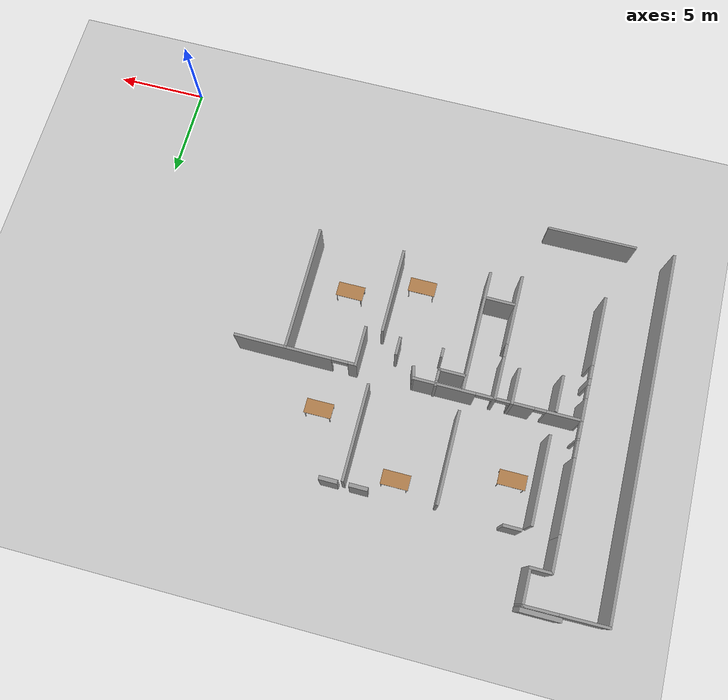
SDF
<sdf version="1.6">
 <world name="default">
  <model name="ground_plane">
   <static>1</static>
   <link name="link">
    <collision name="collision">
     <geometry><plane><normal>0 0 1</normal><size>100 100</size></plane></geometry>
     <surface><friction><ode><mu>100</mu><mu2>50</mu2></ode></friction></surface>
    </collision>
    <visual name="visual">
     <cast_shadows>0</cast_shadows>
     <geometry><plane><normal>0 0 1</normal><size>100 100</size></plane></geometry>
     <material>
      <script><uri>file://media/materials/scripts/gazebo.material</uri><name>Gazebo/Grey</name></script>
     </material>
    </visual>
   </link>
  </model>
  <model name="fin_se1f1.sdf">
   <pose>1.8125 -2.2901 0 0 -0 0</pose>
   <link name="Wall_0">
    <collision name="Wall_0_Collision">
     <geometry><box><size>20 0.15 2.5</size></box></geometry>
     <pose>0 0 1.25 0 -0 0</pose>
    </collision>
    <visual name="Wall_0_Visual">
     <pose>0 0 1.25 0 -0 0</pose>
     <geometry><box><size>20 0.15 2.5</size></box></geometry>
     <material>
      <script><uri>file://media/materials/scripts/gazebo.material</uri><name>Gazebo/Grey</name></script>
      <ambient>1 1 1 1</ambient>
     </material>
     <meta><layer>0</layer></meta>
    </visual>
    <pose>-30.7496 16.4496 0 0 0 -1.5708</pose>
   </link>
   <link name="Wall_100">
    <collision name="Wall_100_Collision">
     <geometry><box><size>2.25 0.15 2.5</size></box></geometry>
     <pose>0 0 1.25 0 -0 0</pose>
    </collision>
    <visual name="Wall_100_Visual">
     <pose>0 0 1.25 0 -0 0</pose>
     <geometry><box><size>2.25 0.15 2.5</size></box></geometry>
     <material>
      <script><uri>file://media/materials/scripts/gazebo.material</uri><name>Gazebo/Grey</name></script>
      <ambient>1 1 1 1</ambient>
     </material>
     <meta><layer>0</layer></meta>
    </visual>
    <pose>-15.464 15.7396 0 0 -0 1.5708</pose>
   </link>
   <link name="Wall_101">
    <pose>-12.164 16.7896 0 0 -0 0</pose>
    <visual name="Wall_101_Visual_0">
     <pose>-3.13147 0 1.25 0 -0 0</pose>
     <geometry><box><size>0.487063 0.15 2.5</size></box></geometry>
     <material>
      <script><uri>file://media/materials/scripts/gazebo.material</uri><name>Gazebo/Grey</name></script>
      <ambient>1 1 1 1</ambient>
     </material>
     <meta><layer>0</layer></meta>
    </visual>
    <collision name="Wall_101_Collision_0">
     <geometry><box><size>0.487063 0.15 2.5</size></box></geometry>
     <pose>-3.13147 0 1.25 0 -0 0</pose>
    </collision>
    <visual name="Wall_101_Visual_1">
     <pose>0.693532 0 1.25 0 -0 0</pose>
     <geometry><box><size>5.36294 0.15 2.5</size></box></geometry>
     <material>
      <script><uri>file://media/materials/scripts/gazebo.material</uri><name>Gazebo/Grey</name></script>
      <ambient>1 1 1 1</ambient>
     </material>
     <meta><layer>0</layer></meta>
    </visual>
    <collision name="Wall_101_Collision_1">
     <geometry><box><size>5.36294 0.15 2.5</size></box></geometry>
     <pose>0.693532 0 1.25 0 -0 0</pose>
    </collision>
    <visual name="Wall_101_Visual_2">
     <pose>-2.43794 0 2.25 0 -0 0</pose>
     <geometry><box><size>0.9 0.15 0.5</size></box></geometry>
     <material>
      <script><uri>file://media/materials/scripts/gazebo.material</uri><name>Gazebo/Grey</name></script>
      <ambient>1 1 1 1</ambient>
     </material>
     <meta><layer>0</layer></meta>
    </visual>
    <collision name="Wall_101_Collision_2">
     <geometry><box><size>0.9 0.15 0.5</size></box></geometry>
     <pose>-2.43794 0 2.25 0 -0 0</pose>
    </collision>
   </link>
   <link name="Wall_104">
    <collision name="Wall_104_Collision">
     <geometry><box><size>7 0.15 2.5</size></box></geometry>
     <pose>0 0 1.25 0 -0 0</pose>
    </collision>
    <visual name="Wall_104_Visual">
     <pose>0 0 1.25 0 -0 0</pose>
     <geometry><box><size>7 0.15 2.5</size></box></geometry>
     <material>
      <script><uri>file://media/materials/scripts/gazebo.material</uri><name>Gazebo/Grey</name></script>
      <ambient>1 1 1 1</ambient>
     </material>
     <meta><layer>0</layer></meta>
    </visual>
    <pose>-11.6118 13.3512 0 0 0 -1.5708</pose>
   </link>
   <link name="Wall_114">
    <collision name="Wall_114_Collision">
     <geometry><box><size>2 0.15 2.5</size></box></geometry>
     <pose>0 0 1.25 0 -0 0</pose>
    </collision>
    <visual name="Wall_114_Visual">
     <pose>0 0 1.25 0 -0 0</pose>
     <geometry><box><size>2 0.15 2.5</size></box></geometry>
     <material>
      <script><uri>file://media/materials/scripts/gazebo.material</uri><name>Gazebo/Grey</name></script>
      <ambient>1 1 1 1</ambient>
     </material>
     <meta><layer>0</layer></meta>
    </visual>
    <pose>-26.1645 15.6146 0 0 -0 1.5708</pose>
   </link>
   <link name="Wall_116">
    <collision name="Wall_116_Collision">
     <geometry><box><size>2 0.15 2.5</size></box></geometry>
     <pose>0 0 1.25 0 -0 0</pose>
    </collision>
    <visual name="Wall_116_Visual">
     <pose>0 0 1.25 0 -0 0</pose>
     <geometry><box><size>2 0.15 2.5</size></box></geometry>
     <material>
      <script><uri>file://media/materials/scripts/gazebo.material</uri><name>Gazebo/Grey</name></script>
      <ambient>1 1 1 1</ambient>
     </material>
     <meta><layer>0</layer></meta>
    </visual>
    <pose>-23.8638 15.7977 0 0 0 -1.5708</pose>
   </link>
   <link name="Wall_118">
    <collision name="Wall_118_Collision">
     <geometry><box><size>1.75 0.15 2.5</size></box></geometry>
     <pose>0 0 1.25 0 -0 0</pose>
    </collision>
    <visual name="Wall_118_Visual">
     <pose>0 0 1.25 0 -0 0</pose>
     <geometry><box><size>1.75 0.15 2.5</size></box></geometry>
     <material>
      <script><uri>file://media/materials/scripts/gazebo.material</uri><name>Gazebo/Grey</name></script>
      <ambient>1 1 1 1</ambient>
     </material>
     <meta><layer>0</layer></meta>
    </visual>
    <pose>-22.0422 11.426 0 0 -0 3.14159</pose>
   </link>
   <link name="Wall_120">
    <pose>-19.7977 16.3512 0 0 0 -1.5708</pose>
    <visual name="Wall_120_Visual_0">
     <pose>-0.341993 0 1.25 0 -0 0</pose>
     <geometry><box><size>0.316013 0.15 2.5</size></box></geometry>
     <material>
      <script><uri>file://media/materials/scripts/gazebo.material</uri><name>Gazebo/Grey</name></script>
      <ambient>1 1 1 1</ambient>
     </material>
     <meta><layer>0</layer></meta>
    </visual>
    <collision name="Wall_120_Collision_0">
     <geometry><box><size>0.316013 0.15 2.5</size></box></geometry>
     <pose>-0.341993 0 1.25 0 -0 0</pose>
    </collision>
    <visual name="Wall_120_Visual_1">
     <pose>0.158007 0 2.25 0 -0 0</pose>
     <geometry><box><size>0.683987 0.15 0.5</size></box></geometry>
     <material>
      <script><uri>file://media/materials/scripts/gazebo.material</uri><name>Gazebo/Grey</name></script>
      <ambient>1 1 1 1</ambient>
     </material>
     <meta><layer>0</layer></meta>
    </visual>
    <collision name="Wall_120_Collision_1">
     <geometry><box><size>0.683987 0.15 0.5</size></box></geometry>
     <pose>0.158007 0 2.25 0 -0 0</pose>
    </collision>
   </link>
   <link name="Wall_121">
    <collision name="Wall_121_Collision">
     <geometry><box><size>1.5 0.15 2.5</size></box></geometry>
     <pose>0 0 1.25 0 -0 0</pose>
    </collision>
    <visual name="Wall_121_Visual">
     <pose>0 0 1.25 0 -0 0</pose>
     <geometry><box><size>1.5 0.15 2.5</size></box></geometry>
     <material>
      <script><uri>file://media/materials/scripts/gazebo.material</uri><name>Gazebo/Grey</name></script>
      <ambient>1 1 1 1</ambient>
     </material>
     <meta><layer>0</layer></meta>
    </visual>
    <pose>-20.4727 15.9262 0 0 -0 3.14159</pose>
   </link>
   <link name="Wall_123">
    <collision name="Wall_123_Collision">
     <geometry><box><size>0.5 0.15 2.5</size></box></geometry>
     <pose>0 0 1.25 0 -0 0</pose>
    </collision>
    <visual name="Wall_123_Visual">
     <pose>0 0 1.25 0 -0 0</pose>
     <geometry><box><size>0.5 0.15 2.5</size></box></geometry>
     <material>
      <script><uri>file://media/materials/scripts/gazebo.material</uri><name>Gazebo/Grey</name></script>
      <ambient>1 1 1 1</ambient>
     </material>
     <meta><layer>0</layer></meta>
    </visual>
    <pose>-19.7442 14.9961 0 0 0 -1.5708</pose>
   </link>
   <link name="Wall_125">
    <collision name="Wall_125_Collision">
     <geometry><box><size>1 0.15 2.5</size></box></geometry>
     <pose>0 0 1.25 0 -0 0</pose>
    </collision>
    <visual name="Wall_125_Visual">
     <pose>0 0 1.25 0 -0 0</pose>
     <geometry><box><size>1 0.15 2.5</size></box></geometry>
     <material>
      <script><uri>file://media/materials/scripts/gazebo.material</uri><name>Gazebo/Grey</name></script>
      <ambient>1 1 1 1</ambient>
     </material>
     <meta><layer>0</layer></meta>
    </visual>
    <pose>-17.39 15.2276 0 0 0 -1.5708</pose>
   </link>
   <link name="Wall_23">
    <collision name="Wall_23_Collision">
     <geometry><box><size>2 0.15 2.5</size></box></geometry>
     <pose>0 0 1.25 0 -0 0</pose>
    </collision>
    <visual name="Wall_23_Visual">
     <pose>0 0 1.25 0 -0 0</pose>
     <geometry><box><size>2 0.15 2.5</size></box></geometry>
     <material>
      <script><uri>file://media/materials/scripts/gazebo.material</uri><name>Gazebo/Grey</name></script>
      <ambient>1 1 1 1</ambient>
     </material>
     <meta><layer>0</layer></meta>
    </visual>
    <pose>-27.5496 23.6496 0 0 -0 1.5708</pose>
   </link>
   <link name="Wall_24">
    <collision name="Wall_24_Collision">
     <geometry><box><size>1.25 0.15 2.5</size></box></geometry>
     <pose>0 0 1.25 0 -0 0</pose>
    </collision>
    <visual name="Wall_24_Visual">
     <pose>0 0 1.25 0 -0 0</pose>
     <geometry><box><size>1.25 0.15 2.5</size></box></geometry>
     <material>
      <script><uri>file://media/materials/scripts/gazebo.material</uri><name>Gazebo/Grey</name></script>
      <ambient>1 1 1 1</ambient>
     </material>
     <meta><layer>0</layer></meta>
    </visual>
    <pose>-26.9996 24.5746 0 0 -0 0</pose>
   </link>
   <link name="Wall_25">
    <collision name="Wall_25_Collision">
     <geometry><box><size>2 0.15 2.5</size></box></geometry>
     <pose>0 0 1.25 0 -0 0</pose>
    </collision>
    <visual name="Wall_25_Visual">
     <pose>0 0 1.25 0 -0 0</pose>
     <geometry><box><size>2 0.15 2.5</size></box></geometry>
     <material>
      <script><uri>file://media/materials/scripts/gazebo.material</uri><name>Gazebo/Grey</name></script>
      <ambient>1 1 1 1</ambient>
     </material>
     <meta><layer>0</layer></meta>
    </visual>
    <pose>-26.4496 25.4996 0 0 -0 1.5708</pose>
   </link>
   <link name="Wall_27">
    <pose>-28.5996 26.3996 0 0 0 -3.12996</pose>
    <visual name="Wall_27_Visual_0">
     <pose>-2.20066 0 1.25 0 -0 0</pose>
     <geometry><box><size>0.048973 0.15 2.5</size></box></geometry>
     <material>
      <script><uri>file://media/materials/scripts/gazebo.material</uri><name>Gazebo/Grey</name></script>
      <ambient>1 1 1 1</ambient>
     </material>
     <meta><layer>0</layer></meta>
    </visual>
    <collision name="Wall_27_Collision_0">
     <geometry><box><size>0.048973 0.15 2.5</size></box></geometry>
     <pose>-2.20066 0 1.25 0 -0 0</pose>
    </collision>
    <visual name="Wall_27_Visual_1">
     <pose>0.939694 0 1.25 0 -0 0</pose>
     <geometry><box><size>2.5709 0.15 2.5</size></box></geometry>
     <material>
      <script><uri>file://media/materials/scripts/gazebo.material</uri><name>Gazebo/Grey</name></script>
      <ambient>1 1 1 1</ambient>
     </material>
     <meta><layer>0</layer></meta>
    </visual>
    <collision name="Wall_27_Collision_1">
     <geometry><box><size>2.5709 0.15 2.5</size></box></geometry>
     <pose>0.939694 0 1.25 0 -0 0</pose>
    </collision>
    <visual name="Wall_27_Visual_2">
     <pose>-1.26096 0 2.25 0 -0 0</pose>
     <geometry><box><size>1.83041 0.15 0.5</size></box></geometry>
     <material>
      <script><uri>file://media/materials/scripts/gazebo.material</uri><name>Gazebo/Grey</name></script>
      <ambient>1 1 1 1</ambient>
     </material>
     <meta><layer>0</layer></meta>
    </visual>
    <collision name="Wall_27_Collision_2">
     <geometry><box><size>1.83041 0.15 0.5</size></box></geometry>
     <pose>-1.26096 0 2.25 0 -0 0</pose>
    </collision>
   </link>
   <link name="Wall_29">
    <pose>-27.5496 16.2996 0 0 0 -1.5708</pose>
    <visual name="Wall_29_Visual_0">
     <pose>-4.45394 0 1.25 0 -0 0</pose>
     <geometry><box><size>4.09211 0.15 2.5</size></box></geometry>
     <material>
      <script><uri>file://media/materials/scripts/gazebo.material</uri><name>Gazebo/Grey</name></script>
      <ambient>1 1 1 1</ambient>
     </material>
     <meta><layer>0</layer></meta>
    </visual>
    <collision name="Wall_29_Collision_0">
     <geometry><box><size>4.09211 0.15 2.5</size></box></geometry>
     <pose>-4.45394 0 1.25 0 -0 0</pose>
    </collision>
    <visual name="Wall_29_Visual_1">
     <pose>-1.44499 0 1.25 0 -0 0</pose>
     <geometry><box><size>0.125793 0.15 2.5</size></box></geometry>
     <material>
      <script><uri>file://media/materials/scripts/gazebo.material</uri><name>Gazebo/Grey</name></script>
      <ambient>1 1 1 1</ambient>
     </material>
     <meta><layer>0</layer></meta>
    </visual>
    <collision name="Wall_29_Collision_1">
     <geometry><box><size>0.125793 0.15 2.5</size></box></geometry>
     <pose>-1.44499 0 1.25 0 -0 0</pose>
    </collision>
    <visual name="Wall_29_Visual_2">
     <pose>0.143983 0 1.25 0 -0 0</pose>
     <geometry><box><size>1.25215 0.15 2.5</size></box></geometry>
     <material>
      <script><uri>file://media/materials/scripts/gazebo.material</uri><name>Gazebo/Grey</name></script>
      <ambient>1 1 1 1</ambient>
     </material>
     <meta><layer>0</layer></meta>
    </visual>
    <collision name="Wall_29_Collision_2">
     <geometry><box><size>1.25215 0.15 2.5</size></box></geometry>
     <pose>0.143983 0 1.25 0 -0 0</pose>
    </collision>
    <visual name="Wall_29_Visual_3">
     <pose>1.69273 0 1.25 0 -0 0</pose>
     <geometry><box><size>0.367155 0.15 2.5</size></box></geometry>
     <material>
      <script><uri>file://media/materials/scripts/gazebo.material</uri><name>Gazebo/Grey</name></script>
      <ambient>1 1 1 1</ambient>
     </material>
     <meta><layer>0</layer></meta>
    </visual>
    <collision name="Wall_29_Collision_3">
     <geometry><box><size>0.367155 0.15 2.5</size></box></geometry>
     <pose>1.69273 0 1.25 0 -0 0</pose>
    </collision>
    <visual name="Wall_29_Visual_4">
     <pose>4.5577 0 1.25 0 -0 0</pose>
     <geometry><box><size>3.8846 0.15 2.5</size></box></geometry>
     <material>
      <script><uri>file://media/materials/scripts/gazebo.material</uri><name>Gazebo/Grey</name></script>
      <ambient>1 1 1 1</ambient>
     </material>
     <meta><layer>0</layer></meta>
    </visual>
    <collision name="Wall_29_Collision_4">
     <geometry><box><size>3.8846 0.15 2.5</size></box></geometry>
     <pose>4.5577 0 1.25 0 -0 0</pose>
    </collision>
    <visual name="Wall_29_Visual_5">
     <pose>-1.95789 0 2.25 0 -0 0</pose>
     <geometry><box><size>0.9 0.15 0.5</size></box></geometry>
     <material>
      <script><uri>file://media/materials/scripts/gazebo.material</uri><name>Gazebo/Grey</name></script>
      <ambient>1 1 1 1</ambient>
     </material>
     <meta><layer>0</layer></meta>
    </visual>
    <collision name="Wall_29_Collision_5">
     <geometry><box><size>0.9 0.15 0.5</size></box></geometry>
     <pose>-1.95789 0 2.25 0 -0 0</pose>
    </collision>
    <visual name="Wall_29_Visual_6">
     <pose>-0.932093 0 2.25 0 -0 0</pose>
     <geometry><box><size>0.9 0.15 0.5</size></box></geometry>
     <material>
      <script><uri>file://media/materials/scripts/gazebo.material</uri><name>Gazebo/Grey</name></script>
      <ambient>1 1 1 1</ambient>
     </material>
     <meta><layer>0</layer></meta>
    </visual>
    <collision name="Wall_29_Collision_6">
     <geometry><box><size>0.9 0.15 0.5</size></box></geometry>
     <pose>-0.932093 0 2.25 0 -0 0</pose>
    </collision>
    <visual name="Wall_29_Visual_7">
     <pose>1.1396 0 2.25 0 -0 0</pose>
     <geometry><box><size>0.739091 0.15 0.5</size></box></geometry>
     <material>
      <script><uri>file://media/materials/scripts/gazebo.material</uri><name>Gazebo/Grey</name></script>
      <ambient>1 1 1 1</ambient>
     </material>
     <meta><layer>0</layer></meta>
    </visual>
    <collision name="Wall_29_Collision_7">
     <geometry><box><size>0.739091 0.15 0.5</size></box></geometry>
     <pose>1.1396 0 2.25 0 -0 0</pose>
    </collision>
    <visual name="Wall_29_Visual_8">
     <pose>2.24585 0 2.25 0 -0 0</pose>
     <geometry><box><size>0.739091 0.15 0.5</size></box></geometry>
     <material>
      <script><uri>file://media/materials/scripts/gazebo.material</uri><name>Gazebo/Grey</name></script>
      <ambient>1 1 1 1</ambient>
     </material>
     <meta><layer>0</layer></meta>
    </visual>
    <collision name="Wall_29_Collision_8">
     <geometry><box><size>0.739091 0.15 0.5</size></box></geometry>
     <pose>2.24585 0 2.25 0 -0 0</pose>
    </collision>
   </link>
   <link name="Wall_67">
    <collision name="Wall_67_Collision">
     <geometry><box><size>4.75 0.15 2.5</size></box></geometry>
     <pose>0 0 1.25 0 -0 0</pose>
    </collision>
    <visual name="Wall_67_Visual">
     <pose>0 0 1.25 0 -0 0</pose>
     <geometry><box><size>4.75 0.15 2.5</size></box></geometry>
     <material>
      <script><uri>file://media/materials/scripts/gazebo.material</uri><name>Gazebo/Grey</name></script>
      <ambient>1 1 1 1</ambient>
     </material>
     <meta><layer>0</layer></meta>
    </visual>
    <pose>-26.1152 20.2344 0 0 0 -1.5708</pose>
   </link>
   <link name="Wall_84">
    <collision name="Wall_84_Collision">
     <geometry><box><size>5.25 0.15 2.5</size></box></geometry>
     <pose>0 0 1.25 0 -0 0</pose>
    </collision>
    <visual name="Wall_84_Visual">
     <pose>0 0 1.25 0 -0 0</pose>
     <geometry><box><size>5.25 0.15 2.5</size></box></geometry>
     <material>
      <script><uri>file://media/materials/scripts/gazebo.material</uri><name>Gazebo/Grey</name></script>
      <ambient>1 1 1 1</ambient>
     </material>
     <meta><layer>0</layer></meta>
    </visual>
    <pose>-16.3938 20.2305 0 0 0 -1.5708</pose>
   </link>
   <link name="Wall_86">
    <collision name="Wall_86_Collision">
     <geometry><box><size>5 0.15 2.5</size></box></geometry>
     <pose>0 0 1.25 0 -0 0</pose>
    </collision>
    <visual name="Wall_86_Visual">
     <pose>0 0 1.25 0 -0 0</pose>
     <geometry><box><size>5 0.15 2.5</size></box></geometry>
     <material>
      <script><uri>file://media/materials/scripts/gazebo.material</uri><name>Gazebo/Grey</name></script>
      <ambient>1 1 1 1</ambient>
     </material>
     <meta><layer>0</layer></meta>
    </visual>
    <pose>-21.316 20.294 0 0 0 -1.5708</pose>
   </link>
   <link name="Wall_91">
    <pose>-23.0235 16.7227 0 0 -0 0</pose>
    <visual name="Wall_91_Visual_0">
     <pose>-3.57417 0 1.25 0 -0 0</pose>
     <geometry><box><size>1.85166 0.15 2.5</size></box></geometry>
     <material>
      <script><uri>file://media/materials/scripts/gazebo.material</uri><name>Gazebo/Grey</name></script>
      <ambient>1 1 1 1</ambient>
     </material>
     <meta><layer>0</layer></meta>
    </visual>
    <collision name="Wall_91_Collision_0">
     <geometry><box><size>1.85166 0.15 2.5</size></box></geometry>
     <pose>-3.57417 0 1.25 0 -0 0</pose>
    </collision>
    <visual name="Wall_91_Visual_1">
     <pose>-1.38374 0 1.25 0 -0 0</pose>
     <geometry><box><size>1.29238 0.15 2.5</size></box></geometry>
     <material>
      <script><uri>file://media/materials/scripts/gazebo.material</uri><name>Gazebo/Grey</name></script>
      <ambient>1 1 1 1</ambient>
     </material>
     <meta><layer>0</layer></meta>
    </visual>
    <collision name="Wall_91_Collision_1">
     <geometry><box><size>1.29238 0.15 2.5</size></box></geometry>
     <pose>-1.38374 0 1.25 0 -0 0</pose>
    </collision>
    <visual name="Wall_91_Visual_2">
     <pose>0.094604 0 1.25 0 -0 0</pose>
     <geometry><box><size>0.186132 0.15 2.5</size></box></geometry>
     <material>
      <script><uri>file://media/materials/scripts/gazebo.material</uri><name>Gazebo/Grey</name></script>
      <ambient>1 1 1 1</ambient>
     </material>
     <meta><layer>0</layer></meta>
    </visual>
    <collision name="Wall_91_Collision_2">
     <geometry><box><size>0.186132 0.15 2.5</size></box></geometry>
     <pose>0.094604 0 1.25 0 -0 0</pose>
    </collision>
    <visual name="Wall_91_Visual_3">
     <pose>2.79384 0 1.25 0 -0 0</pose>
     <geometry><box><size>3.41233 0.15 2.5</size></box></geometry>
     <material>
      <script><uri>file://media/materials/scripts/gazebo.material</uri><name>Gazebo/Grey</name></script>
      <ambient>1 1 1 1</ambient>
     </material>
     <meta><layer>0</layer></meta>
    </visual>
    <collision name="Wall_91_Collision_3">
     <geometry><box><size>3.41233 0.15 2.5</size></box></geometry>
     <pose>2.79384 0 1.25 0 -0 0</pose>
    </collision>
    <visual name="Wall_91_Visual_4">
     <pose>-2.33914 0 2.25 0 -0 0</pose>
     <geometry><box><size>0.61841 0.15 0.5</size></box></geometry>
     <material>
      <script><uri>file://media/materials/scripts/gazebo.material</uri><name>Gazebo/Grey</name></script>
      <ambient>1 1 1 1</ambient>
     </material>
     <meta><layer>0</layer></meta>
    </visual>
    <collision name="Wall_91_Collision_4">
     <geometry><box><size>0.61841 0.15 0.5</size></box></geometry>
     <pose>-2.33914 0 2.25 0 -0 0</pose>
    </collision>
    <visual name="Wall_91_Visual_5">
     <pose>-0.368008 0 2.25 0 -0 0</pose>
     <geometry><box><size>0.739091 0.15 0.5</size></box></geometry>
     <material>
      <script><uri>file://media/materials/scripts/gazebo.material</uri><name>Gazebo/Grey</name></script>
      <ambient>1 1 1 1</ambient>
     </material>
     <meta><layer>0</layer></meta>
    </visual>
    <collision name="Wall_91_Collision_5">
     <geometry><box><size>0.739091 0.15 0.5</size></box></geometry>
     <pose>-0.368008 0 2.25 0 -0 0</pose>
    </collision>
    <visual name="Wall_91_Visual_6">
     <pose>0.637671 0 2.25 0 -0 0</pose>
     <geometry><box><size>0.9 0.15 0.5</size></box></geometry>
     <material>
      <script><uri>file://media/materials/scripts/gazebo.material</uri><name>Gazebo/Grey</name></script>
      <ambient>1 1 1 1</ambient>
     </material>
     <meta><layer>0</layer></meta>
    </visual>
    <collision name="Wall_91_Collision_6">
     <geometry><box><size>0.9 0.15 0.5</size></box></geometry>
     <pose>0.637671 0 2.25 0 -0 0</pose>
    </collision>
   </link>
   <link name="Wall_92">
    <collision name="Wall_92_Collision">
     <geometry><box><size>0.75 0.15 2.5</size></box></geometry>
     <pose>0 0 1.25 0 -0 0</pose>
    </collision>
    <visual name="Wall_92_Visual">
     <pose>0 0 1.25 0 -0 0</pose>
     <geometry><box><size>0.75 0.15 2.5</size></box></geometry>
     <material>
      <script><uri>file://media/materials/scripts/gazebo.material</uri><name>Gazebo/Grey</name></script>
      <ambient>1 1 1 1</ambient>
     </material>
     <meta><layer>0</layer></meta>
    </visual>
    <pose>-18.5209 16.4329 0 0 0 -1.309</pose>
   </link>
   <link name="Wall_94">
    <collision name="Wall_94_Collision">
     <geometry><box><size>6.75 0.15 2.5</size></box></geometry>
     <pose>0 0 1.25 0 -0 0</pose>
    </collision>
    <visual name="Wall_94_Visual">
     <pose>0 0 1.25 0 -0 0</pose>
     <geometry><box><size>6.75 0.15 2.5</size></box></geometry>
     <material>
      <script><uri>file://media/materials/scripts/gazebo.material</uri><name>Gazebo/Grey</name></script>
      <ambient>1 1 1 1</ambient>
     </material>
     <meta><layer>0</layer></meta>
    </visual>
    <pose>-21.2422 13.3157 0 0 0 -1.5708</pose>
   </link>
   <link name="Wall_96">
    <pose>-22.9543 13.2442 0 0 0 -1.5708</pose>
    <visual name="Wall_96_Visual_0">
     <pose>-2.32948 0 1.25 0 -0 0</pose>
     <geometry><box><size>2.34105 0.15 2.5</size></box></geometry>
     <material>
      <script><uri>file://media/materials/scripts/gazebo.material</uri><name>Gazebo/Grey</name></script>
      <ambient>1 1 1 1</ambient>
     </material>
     <meta><layer>0</layer></meta>
    </visual>
    <collision name="Wall_96_Collision_0">
     <geometry><box><size>2.34105 0.15 2.5</size></box></geometry>
     <pose>-2.32948 0 1.25 0 -0 0</pose>
    </collision>
    <visual name="Wall_96_Visual_1">
     <pose>1.53001 0 1.25 0 -0 0</pose>
     <geometry><box><size>3.93998 0.15 2.5</size></box></geometry>
     <material>
      <script><uri>file://media/materials/scripts/gazebo.material</uri><name>Gazebo/Grey</name></script>
      <ambient>1 1 1 1</ambient>
     </material>
     <meta><layer>0</layer></meta>
    </visual>
    <collision name="Wall_96_Collision_1">
     <geometry><box><size>3.93998 0.15 2.5</size></box></geometry>
     <pose>1.53001 0 1.25 0 -0 0</pose>
    </collision>
    <visual name="Wall_96_Visual_2">
     <pose>-0.799464 0 2.25 0 -0 0</pose>
     <geometry><box><size>0.718978 0.15 0.5</size></box></geometry>
     <material>
      <script><uri>file://media/materials/scripts/gazebo.material</uri><name>Gazebo/Grey</name></script>
      <ambient>1 1 1 1</ambient>
     </material>
     <meta><layer>0</layer></meta>
    </visual>
    <collision name="Wall_96_Collision_2">
     <geometry><box><size>0.718978 0.15 0.5</size></box></geometry>
     <pose>-0.799464 0 2.25 0 -0 0</pose>
    </collision>
   </link>
   <link name="Wall_98">
    <collision name="Wall_98_Collision">
     <geometry><box><size>4.75 0.15 2.5</size></box></geometry>
     <pose>0 0 1.25 0 -0 0</pose>
    </collision>
    <visual name="Wall_98_Visual">
     <pose>0 0 1.25 0 -0 0</pose>
     <geometry><box><size>4.75 0.15 2.5</size></box></geometry>
     <material>
      <script><uri>file://media/materials/scripts/gazebo.material</uri><name>Gazebo/Grey</name></script>
      <ambient>1 1 1 1</ambient>
     </material>
     <meta><layer>0</layer></meta>
    </visual>
    <pose>-16.3735 12.2826 0 0 0 -1.5708</pose>
   </link>
   <static>1</static>
  </model>
  <model name="table">
   <static>1</static>
   <link name="link">
    <collision name="surface">
     <pose>0 0 1 0 -0 0</pose>
     <geometry><box><size>1.5 0.8 0.03</size></box></geometry>
     <surface><friction><ode><mu>0.6</mu><mu2>0.6</mu2></ode></friction></surface>
    </collision>
    <visual name="visual1">
     <pose>0 0 1 0 -0 0</pose>
     <geometry><box><size>1.5 0.8 0.03</size></box></geometry>
     <material>
      <script><uri>file://media/materials/scripts/gazebo.material</uri><name>Gazebo/Wood</name></script>
     </material>
    </visual>
    <collision name="front_left_leg">
     <pose>0.68 0.38 0.5 0 -0 0</pose>
     <geometry><cylinder><radius>0.02</radius><length>1</length></cylinder></geometry>
    </collision>
    <visual name="front_left_leg">
     <pose>0.68 0.38 0.5 0 -0 0</pose>
     <geometry><cylinder><radius>0.02</radius><length>1</length></cylinder></geometry>
     <material>
      <script><uri>file://media/materials/scripts/gazebo.material</uri><name>Gazebo/Grey</name></script>
     </material>
    </visual>
    <collision name="front_right_leg">
     <pose>0.68 -0.38 0.5 0 -0 0</pose>
     <geometry><cylinder><radius>0.02</radius><length>1</length></cylinder></geometry>
    </collision>
    <visual name="front_right_leg">
     <pose>0.68 -0.38 0.5 0 -0 0</pose>
     <geometry><cylinder><radius>0.02</radius><length>1</length></cylinder></geometry>
     <material>
      <script><uri>file://media/materials/scripts/gazebo.material</uri><name>Gazebo/Grey</name></script>
     </material>
    </visual>
    <collision name="back_right_leg">
     <pose>-0.68 -0.38 0.5 0 -0 0</pose>
     <geometry><cylinder><radius>0.02</radius><length>1</length></cylinder></geometry>
    </collision>
    <visual name="back_right_leg">
     <pose>-0.68 -0.38 0.5 0 -0 0</pose>
     <geometry><cylinder><radius>0.02</radius><length>1</length></cylinder></geometry>
     <material>
      <script><uri>file://media/materials/scripts/gazebo.material</uri><name>Gazebo/Grey</name></script>
     </material>
    </visual>
    <collision name="back_left_leg">
     <pose>-0.68 0.38 0.5 0 -0 0</pose>
     <geometry><cylinder><radius>0.02</radius><length>1</length></cylinder></geometry>
    </collision>
    <visual name="back_left_leg">
     <pose>-0.68 0.38 0.5 0 -0 0</pose>
     <geometry><cylinder><radius>0.02</radius><length>1</length></cylinder></geometry>
     <material>
      <script><uri>file://media/materials/scripts/gazebo.material</uri><name>Gazebo/Grey</name></script>
     </material>
    </visual>
   </link>
   <pose>-23.0593 18.0717 0 0 -0 0</pose>
  </model>
  <model name="table_0">
   <static>1</static>
   <link name="link">
    <collision name="surface">
     <pose>0 0 1 0 -0 0</pose>
     <geometry><box><size>1.5 0.8 0.03</size></box></geometry>
     <surface><friction><ode><mu>0.6</mu><mu2>0.6</mu2></ode></friction></surface>
    </collision>
    <visual name="visual1">
     <pose>0 0 1 0 -0 0</pose>
     <geometry><box><size>1.5 0.8 0.03</size></box></geometry>
     <material>
      <script><uri>file://media/materials/scripts/gazebo.material</uri><name>Gazebo/Wood</name></script>
     </material>
    </visual>
    <collision name="front_left_leg">
     <pose>0.68 0.38 0.5 0 -0 0</pose>
     <geometry><cylinder><radius>0.02</radius><length>1</length></cylinder></geometry>
    </collision>
    <visual name="front_left_leg">
     <pose>0.68 0.38 0.5 0 -0 0</pose>
     <geometry><cylinder><radius>0.02</radius><length>1</length></cylinder></geometry>
     <material>
      <script><uri>file://media/materials/scripts/gazebo.material</uri><name>Gazebo/Grey</name></script>
     </material>
    </visual>
    <collision name="front_right_leg">
     <pose>0.68 -0.38 0.5 0 -0 0</pose>
     <geometry><cylinder><radius>0.02</radius><length>1</length></cylinder></geometry>
    </collision>
    <visual name="front_right_leg">
     <pose>0.68 -0.38 0.5 0 -0 0</pose>
     <geometry><cylinder><radius>0.02</radius><length>1</length></cylinder></geometry>
     <material>
      <script><uri>file://media/materials/scripts/gazebo.material</uri><name>Gazebo/Grey</name></script>
     </material>
    </visual>
    <collision name="back_right_leg">
     <pose>-0.68 -0.38 0.5 0 -0 0</pose>
     <geometry><cylinder><radius>0.02</radius><length>1</length></cylinder></geometry>
    </collision>
    <visual name="back_right_leg">
     <pose>-0.68 -0.38 0.5 0 -0 0</pose>
     <geometry><cylinder><radius>0.02</radius><length>1</length></cylinder></geometry>
     <material>
      <script><uri>file://media/materials/scripts/gazebo.material</uri><name>Gazebo/Grey</name></script>
     </material>
    </visual>
    <collision name="back_left_leg">
     <pose>-0.68 0.38 0.5 0 -0 0</pose>
     <geometry><cylinder><radius>0.02</radius><length>1</length></cylinder></geometry>
    </collision>
    <visual name="back_left_leg">
     <pose>-0.68 0.38 0.5 0 -0 0</pose>
     <geometry><cylinder><radius>0.02</radius><length>1</length></cylinder></geometry>
     <material>
      <script><uri>file://media/materials/scripts/gazebo.material</uri><name>Gazebo/Grey</name></script>
     </material>
    </visual>
   </link>
   <pose>-17.1552 19.6086 0 0 -0 0</pose>
  </model>
  <model name="table_1">
   <static>1</static>
   <link name="link">
    <collision name="surface">
     <pose>0 0 1 0 -0 0</pose>
     <geometry><box><size>1.5 0.8 0.03</size></box></geometry>
     <surface><friction><ode><mu>0.6</mu><mu2>0.6</mu2></ode></friction></surface>
    </collision>
    <visual name="visual1">
     <pose>0 0 1 0 -0 0</pose>
     <geometry><box><size>1.5 0.8 0.03</size></box></geometry>
     <material>
      <script><uri>file://media/materials/scripts/gazebo.material</uri><name>Gazebo/Wood</name></script>
     </material>
    </visual>
    <collision name="front_left_leg">
     <pose>0.68 0.38 0.5 0 -0 0</pose>
     <geometry><cylinder><radius>0.02</radius><length>1</length></cylinder></geometry>
    </collision>
    <visual name="front_left_leg">
     <pose>0.68 0.38 0.5 0 -0 0</pose>
     <geometry><cylinder><radius>0.02</radius><length>1</length></cylinder></geometry>
     <material>
      <script><uri>file://media/materials/scripts/gazebo.material</uri><name>Gazebo/Grey</name></script>
     </material>
    </visual>
    <collision name="front_right_leg">
     <pose>0.68 -0.38 0.5 0 -0 0</pose>
     <geometry><cylinder><radius>0.02</radius><length>1</length></cylinder></geometry>
    </collision>
    <visual name="front_right_leg">
     <pose>0.68 -0.38 0.5 0 -0 0</pose>
     <geometry><cylinder><radius>0.02</radius><length>1</length></cylinder></geometry>
     <material>
      <script><uri>file://media/materials/scripts/gazebo.material</uri><name>Gazebo/Grey</name></script>
     </material>
    </visual>
    <collision name="back_right_leg">
     <pose>-0.68 -0.38 0.5 0 -0 0</pose>
     <geometry><cylinder><radius>0.02</radius><length>1</length></cylinder></geometry>
    </collision>
    <visual name="back_right_leg">
     <pose>-0.68 -0.38 0.5 0 -0 0</pose>
     <geometry><cylinder><radius>0.02</radius><length>1</length></cylinder></geometry>
     <material>
      <script><uri>file://media/materials/scripts/gazebo.material</uri><name>Gazebo/Grey</name></script>
     </material>
    </visual>
    <collision name="back_left_leg">
     <pose>-0.68 0.38 0.5 0 -0 0</pose>
     <geometry><cylinder><radius>0.02</radius><length>1</length></cylinder></geometry>
    </collision>
    <visual name="back_left_leg">
     <pose>-0.68 0.38 0.5 0 -0 0</pose>
     <geometry><cylinder><radius>0.02</radius><length>1</length></cylinder></geometry>
     <material>
      <script><uri>file://media/materials/scripts/gazebo.material</uri><name>Gazebo/Grey</name></script>
     </material>
    </visual>
   </link>
   <pose>-12.2601 16.9623 0 0 -0 0</pose>
  </model>
  <model name="table_2">
   <static>1</static>
   <link name="link">
    <collision name="surface">
     <pose>0 0 1 0 -0 0</pose>
     <geometry><box><size>1.5 0.8 0.03</size></box></geometry>
     <surface><friction><ode><mu>0.6</mu><mu2>0.6</mu2></ode></friction></surface>
    </collision>
    <visual name="visual1">
     <pose>0 0 1 0 -0 0</pose>
     <geometry><box><size>1.5 0.8 0.03</size></box></geometry>
     <material>
      <script><uri>file://media/materials/scripts/gazebo.material</uri><name>Gazebo/Wood</name></script>
     </material>
    </visual>
    <collision name="front_left_leg">
     <pose>0.68 0.38 0.5 0 -0 0</pose>
     <geometry><cylinder><radius>0.02</radius><length>1</length></cylinder></geometry>
    </collision>
    <visual name="front_left_leg">
     <pose>0.68 0.38 0.5 0 -0 0</pose>
     <geometry><cylinder><radius>0.02</radius><length>1</length></cylinder></geometry>
     <material>
      <script><uri>file://media/materials/scripts/gazebo.material</uri><name>Gazebo/Grey</name></script>
     </material>
    </visual>
    <collision name="front_right_leg">
     <pose>0.68 -0.38 0.5 0 -0 0</pose>
     <geometry><cylinder><radius>0.02</radius><length>1</length></cylinder></geometry>
    </collision>
    <visual name="front_right_leg">
     <pose>0.68 -0.38 0.5 0 -0 0</pose>
     <geometry><cylinder><radius>0.02</radius><length>1</length></cylinder></geometry>
     <material>
      <script><uri>file://media/materials/scripts/gazebo.material</uri><name>Gazebo/Grey</name></script>
     </material>
    </visual>
    <collision name="back_right_leg">
     <pose>-0.68 -0.38 0.5 0 -0 0</pose>
     <geometry><cylinder><radius>0.02</radius><length>1</length></cylinder></geometry>
    </collision>
    <visual name="back_right_leg">
     <pose>-0.68 -0.38 0.5 0 -0 0</pose>
     <geometry><cylinder><radius>0.02</radius><length>1</length></cylinder></geometry>
     <material>
      <script><uri>file://media/materials/scripts/gazebo.material</uri><name>Gazebo/Grey</name></script>
     </material>
    </visual>
    <collision name="back_left_leg">
     <pose>-0.68 0.38 0.5 0 -0 0</pose>
     <geometry><cylinder><radius>0.02</radius><length>1</length></cylinder></geometry>
    </collision>
    <visual name="back_left_leg">
     <pose>-0.68 0.38 0.5 0 -0 0</pose>
     <geometry><cylinder><radius>0.02</radius><length>1</length></cylinder></geometry>
     <material>
      <script><uri>file://media/materials/scripts/gazebo.material</uri><name>Gazebo/Grey</name></script>
     </material>
    </visual>
   </link>
   <pose>-15.9954 8.87778 0 0 -0 0</pose>
  </model>
  <model name="table_3">
   <static>1</static>
   <link name="link">
    <collision name="surface">
     <pose>0 0 1 0 -0 0</pose>
     <geometry><box><size>1.5 0.8 0.03</size></box></geometry>
     <surface><friction><ode><mu>0.6</mu><mu2>0.6</mu2></ode></friction></surface>
    </collision>
    <visual name="visual1">
     <pose>0 0 1 0 -0 0</pose>
     <geometry><box><size>1.5 0.8 0.03</size></box></geometry>
     <material>
      <script><uri>file://media/materials/scripts/gazebo.material</uri><name>Gazebo/Wood</name></script>
     </material>
    </visual>
    <collision name="front_left_leg">
     <pose>0.68 0.38 0.5 0 -0 0</pose>
     <geometry><cylinder><radius>0.02</radius><length>1</length></cylinder></geometry>
    </collision>
    <visual name="front_left_leg">
     <pose>0.68 0.38 0.5 0 -0 0</pose>
     <geometry><cylinder><radius>0.02</radius><length>1</length></cylinder></geometry>
     <material>
      <script><uri>file://media/materials/scripts/gazebo.material</uri><name>Gazebo/Grey</name></script>
     </material>
    </visual>
    <collision name="front_right_leg">
     <pose>0.68 -0.38 0.5 0 -0 0</pose>
     <geometry><cylinder><radius>0.02</radius><length>1</length></cylinder></geometry>
    </collision>
    <visual name="front_right_leg">
     <pose>0.68 -0.38 0.5 0 -0 0</pose>
     <geometry><cylinder><radius>0.02</radius><length>1</length></cylinder></geometry>
     <material>
      <script><uri>file://media/materials/scripts/gazebo.material</uri><name>Gazebo/Grey</name></script>
     </material>
    </visual>
    <collision name="back_right_leg">
     <pose>-0.68 -0.38 0.5 0 -0 0</pose>
     <geometry><cylinder><radius>0.02</radius><length>1</length></cylinder></geometry>
    </collision>
    <visual name="back_right_leg">
     <pose>-0.68 -0.38 0.5 0 -0 0</pose>
     <geometry><cylinder><radius>0.02</radius><length>1</length></cylinder></geometry>
     <material>
      <script><uri>file://media/materials/scripts/gazebo.material</uri><name>Gazebo/Grey</name></script>
     </material>
    </visual>
    <collision name="back_left_leg">
     <pose>-0.68 0.38 0.5 0 -0 0</pose>
     <geometry><cylinder><radius>0.02</radius><length>1</length></cylinder></geometry>
    </collision>
    <visual name="back_left_leg">
     <pose>-0.68 0.38 0.5 0 -0 0</pose>
     <geometry><cylinder><radius>0.02</radius><length>1</length></cylinder></geometry>
     <material>
      <script><uri>file://media/materials/scripts/gazebo.material</uri><name>Gazebo/Grey</name></script>
     </material>
    </visual>
   </link>
   <pose>-12.1812 10.1292 0 0 -0 0</pose>
  </model>
  <model name="unit_box_0">
   <pose>-24.4576 4.0799 1.04677 -9e-06 -0.00043 0.006086</pose>
   <link name="link">
    <inertial>
     <mass>1</mass>
     <inertia>
      <ixx>0.166667</ixx>
      <ixy>0</ixy>
      <ixz>0</ixz>
      <iyy>0.166667</iyy>
      <iyz>0</iyz>
      <izz>0.166667</izz>
     </inertia>
    </inertial>
    <collision name="collision"><geometry><box><size>4.97135 0.1227 2.09568</size></box></geometry></collision>
    <visual name="visual">
     <geometry><box><size>4.97135 0.1227 2.09568</size></box></geometry>
     <material>
      <script><name>Gazebo/Grey</name><uri>file://media/materials/scripts/gazebo.material</uri></script>
     </material>
    </visual>
   </link>
  </model>
  <model name="unit_box_2">
   <pose>-25.6221 24.3314 1.08414 -1e-06 0 0.004602</pose>
   <link name="link">
    <inertial>
     <mass>1</mass>
     <inertia>
      <ixx>0.166667</ixx>
      <ixy>0</ixy>
      <ixz>0</ixz>
      <iyy>0.166667</iyy>
      <iyz>0</iyz>
      <izz>0.166667</izz>
     </inertia>
    </inertial>
    <collision name="collision"><geometry><box><size>2.14794 0.250883 2.16828</size></box></geometry></collision>
    <visual name="visual">
     <geometry><box><size>2.14794 0.250883 2.16828</size></box></geometry>
     <material>
      <script><name>Gazebo/Grey</name><uri>file://media/materials/scripts/gazebo.material</uri></script>
     </material>
    </visual>
   </link>
  </model>
  <model name="unit_box_3">
   <pose>-23.4042 20.6117 1.15904 -0 -1e-06 -0.000816</pose>
   <link name="link">
    <inertial>
     <mass>1</mass>
     <inertia>
      <ixx>0.166667</ixx>
      <ixy>0</ixy>
      <ixz>0</ixz>
      <iyy>0.166667</iyy>
      <iyz>0</iyz>
      <izz>0.166667</izz>
     </inertia>
    </inertial>
    <collision name="collision"><geometry><box><size>1 0.163767 2.31807</size></box></geometry></collision>
    <visual name="visual">
     <geometry><box><size>1 0.163767 2.31807</size></box></geometry>
     <material>
      <script><name>Gazebo/Grey</name><uri>file://media/materials/scripts/gazebo.material</uri></script>
     </material>
    </visual>
   </link>
  </model>
  <model name="unit_box_4">
   <pose>-15.4388 20.6155 1.20019 0 -0 0.0002</pose>
   <link name="link">
    <inertial>
     <mass>1</mass>
     <inertia>
      <ixx>0.166667</ixx>
      <ixy>0</ixy>
      <ixz>0</ixz>
      <iyy>0.166667</iyy>
      <iyz>0</iyz>
      <izz>0.166667</izz>
     </inertia>
    </inertial>
    <collision name="collision"><geometry><box><size>1 0.208737 2.40039</size></box></geometry></collision>
    <visual name="visual">
     <geometry><box><size>1 0.208737 2.40039</size></box></geometry>
     <material>
      <script><name>Gazebo/Grey</name><uri>file://media/materials/scripts/gazebo.material</uri></script>
     </material>
    </visual>
   </link>
  </model>
  <model name="unit_box_5">
   <pose>-13.8325 20.622 1.10052 0 -0 0.001975</pose>
   <link name="link">
    <inertial>
     <mass>1</mass>
     <inertia>
      <ixx>0.166667</ixx>
      <ixy>0</ixy>
      <ixz>0</ixz>
      <iyy>0.166667</iyy>
      <iyz>0</iyz>
      <izz>0.166667</izz>
     </inertia>
    </inertial>
    <collision name="collision"><geometry><box><size>1 0.221318 2.20103</size></box></geometry></collision>
    <visual name="visual">
     <geometry><box><size>1 0.221318 2.20103</size></box></geometry>
     <material>
      <script><name>Gazebo/Grey</name><uri>file://media/materials/scripts/gazebo.material</uri></script>
     </material>
    </visual>
   </link>
  </model>
 </world>
</sdf>
